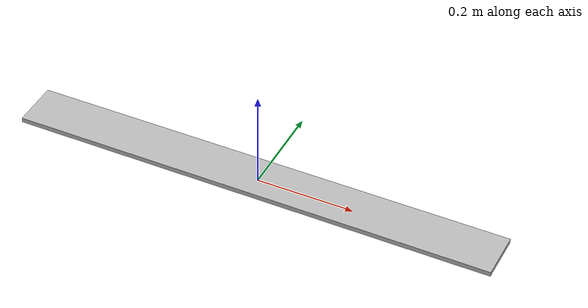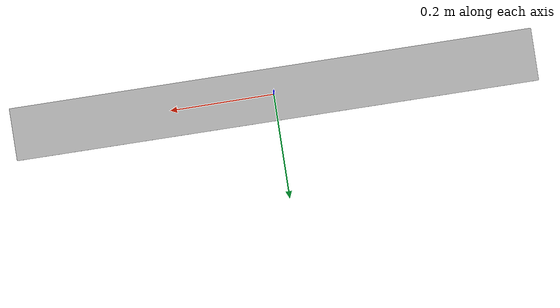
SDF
<sdf version='1.6'>
  <model name='meter_bar_ANSI'>
    <link name='meter_bar_ANSI'>
      <pose frame=''>0 0 0 0 0 0</pose>

      <inertial>
        <pose frame=''>0 0.00594 0.31407 0 0 0</pose>
        <mass>0.1</mass>
        <inertia>
          <ixx>0.225152</ixx>
          <ixy>0</ixy>
          <ixz>0</ixz>
          <iyy>0.41938</iyy>
          <iyz>0</iyz>
          <izz>0.206933</izz>
        </inertia>
      </inertial>

      <collision name='bar_collision'>
	<!-- Change max_vel and/or min_depth to keep from "bouncing" -->
	<surface>
	  <contact>
	    <ode>
	      <kp>1e12</kp>
	      <kd>1e0</kd>
	      <max_vel>0</max_vel>
	      <min_depth>0.001</min_depth>
	    </ode>
	  </contact>
	</surface>
        <pose frame=''>0 0 0 0 0 0</pose>
        <geometry>
          <mesh>
            <scale>0.0254 0.0254 0.0254</scale>
            <uri>model://meter_bar_ISO_metric/meshes/meter_bar_ISO_metric.stl </uri>
          </mesh>
        </geometry>
      </collision>

      <visual name='bar_visual'>
        <pose frame=''>0 0 0 0 0 0</pose>
        <geometry>
          <mesh>
            <scale>0.0254 0.0254 0.0254</scale>
            <uri>model://meter_bar_ISO_metric/meshes/meter_bar_ISO_metric.stl </uri>
          </mesh>
        </geometry>
      </visual>

    </link>
  </model>
</sdf>
